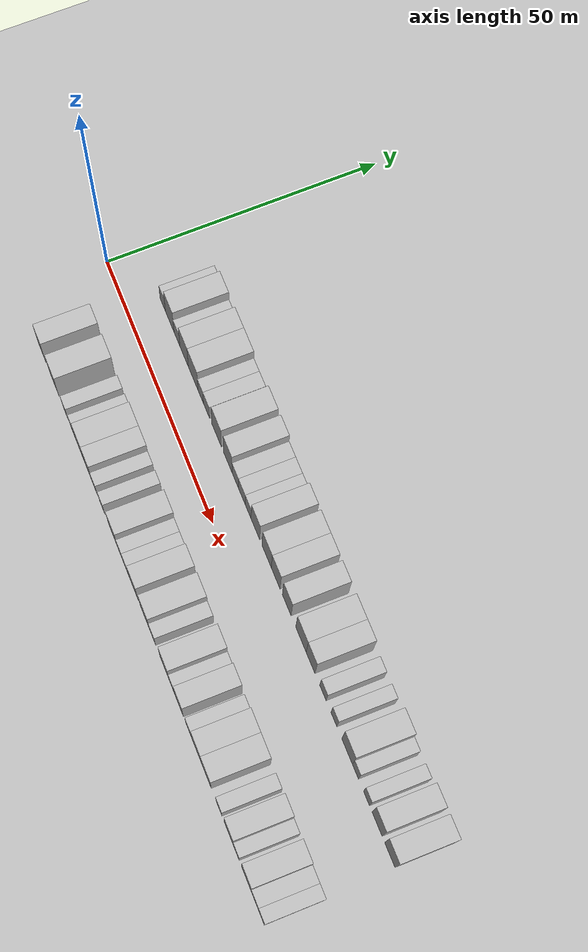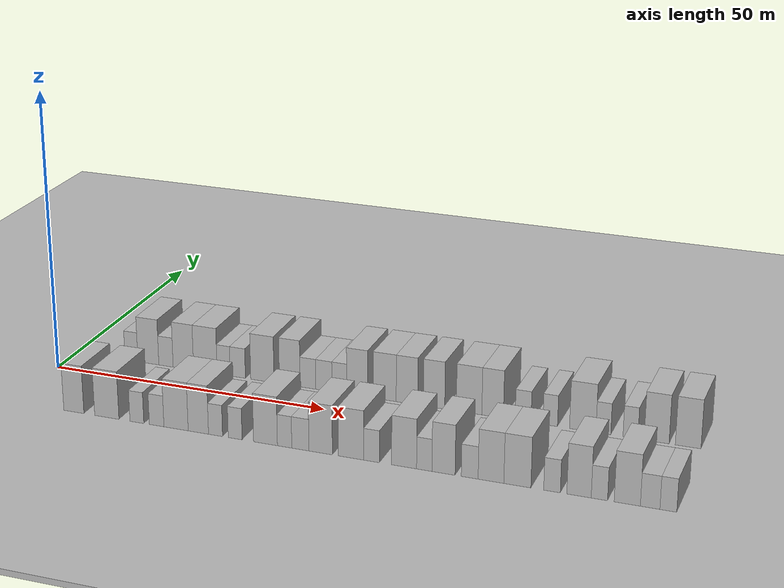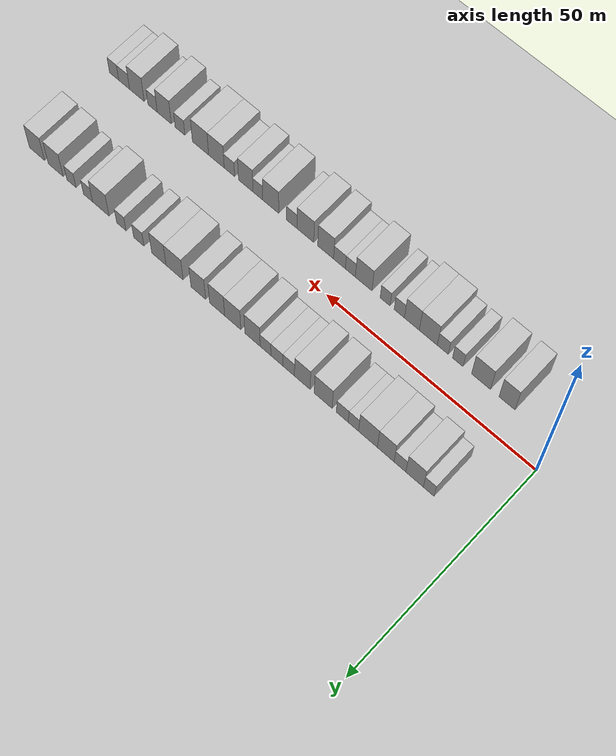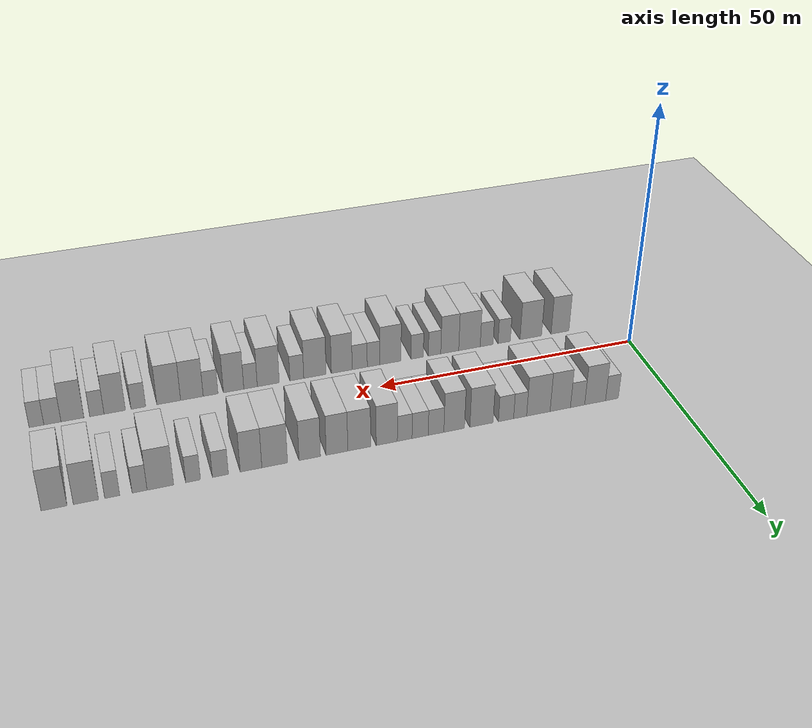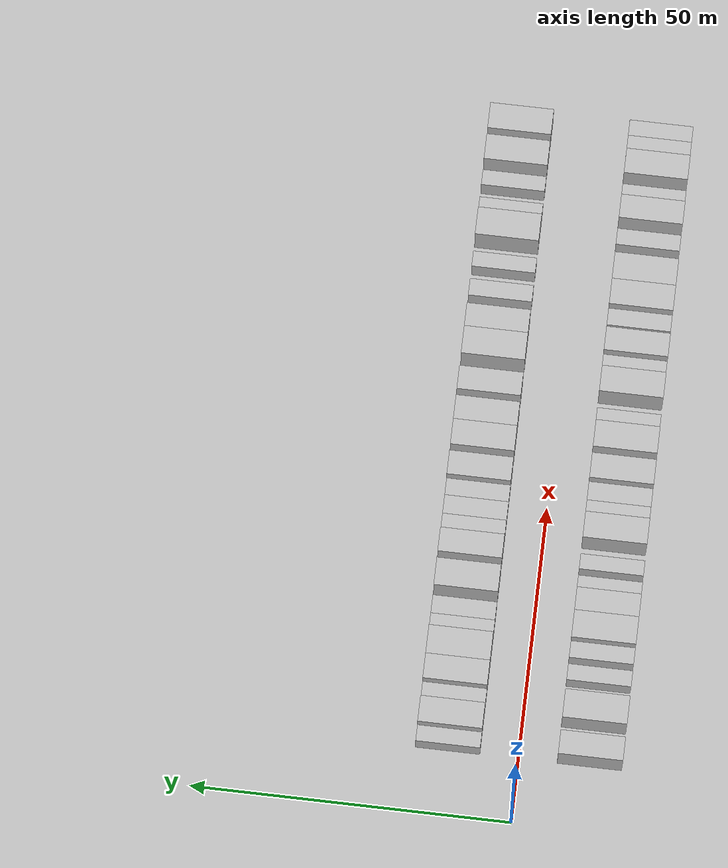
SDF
<sdf version="1.6">
 <world name="default">
  <include><name>ground_plane_1</name><uri>model://HANNAS_ground_plane</uri></include>
  <include>
   <name>ground_plane_2</name>
   <uri>model://HANNAS_ground_plane</uri>
   <pose>100 0 0  0 0 0</pose>
  </include>
  <model name="building_1">
   <static>1</static>
   <pose>11.2552 11.0000 0 0.000000 0.000000 1.570796</pose>
   <link name="link">
    <pose>0 0 3.00 0 0 0</pose>
    <collision name="collision"><geometry><box><size>10.0000 2.5103 6.0000</size></box></geometry></collision>
    <visual name="visual">
     <cast_shadows>0</cast_shadows>
     <geometry><box><size>10.0000 2.5103 6.0000</size></box></geometry>
     <material>
      <script>
       <uri>model://HANNAS_wall/materials/scripts</uri>
       <uri>model://HANNAS_wall/materials/textures</uri>
       <name>vrc/HANNAS_wall</name>
      </script>
     </material>
    </visual>
   </link>
  </model>
  <model name="building_2">
   <static>1</static>
   <pose>14.5496 11.0000 0 0.000000 0.000000 1.570796</pose>
   <link name="link">
    <pose>0 0 4.50 0 0 0</pose>
    <collision name="collision"><geometry><box><size>10.0000 4.0786 9.0000</size></box></geometry></collision>
    <visual name="visual">
     <cast_shadows>0</cast_shadows>
     <geometry><box><size>10.0000 4.0786 9.0000</size></box></geometry>
     <material>
      <script>
       <uri>model://HANNAS_wall/materials/scripts</uri>
       <uri>model://HANNAS_wall/materials/textures</uri>
       <name>vrc/HANNAS_wall</name>
      </script>
     </material>
    </visual>
   </link>
  </model>
  <model name="building_3">
   <static>1</static>
   <pose>17.9715 11.0000 0 0.000000 0.000000 1.570796</pose>
   <link name="link">
    <pose>0 0 3.00 0 0 0</pose>
    <collision name="collision"><geometry><box><size>10.0000 2.7652 6.0000</size></box></geometry></collision>
    <visual name="visual">
     <cast_shadows>0</cast_shadows>
     <geometry><box><size>10.0000 2.7652 6.0000</size></box></geometry>
     <material>
      <script>
       <uri>model://HANNAS_wall/materials/scripts</uri>
       <uri>model://HANNAS_wall/materials/textures</uri>
       <name>vrc/HANNAS_wall</name>
      </script>
     </material>
    </visual>
   </link>
  </model>
  <model name="building_4">
   <static>1</static>
   <pose>21.3193 11.0000 0 0.000000 0.000000 1.570796</pose>
   <link name="link">
    <pose>0 0 4.50 0 0 0</pose>
    <collision name="collision"><geometry><box><size>10.0000 3.9303 9.0000</size></box></geometry></collision>
    <visual name="visual">
     <cast_shadows>0</cast_shadows>
     <geometry><box><size>10.0000 3.9303 9.0000</size></box></geometry>
     <material>
      <script>
       <uri>model://HANNAS_wall/materials/scripts</uri>
       <uri>model://HANNAS_wall/materials/textures</uri>
       <name>vrc/HANNAS_wall</name>
      </script>
     </material>
    </visual>
   </link>
  </model>
  <model name="building_5">
   <static>1</static>
   <pose>25.5266 11.0000 0 0.000000 0.000000 1.570796</pose>
   <link name="link">
    <pose>0 0 4.50 0 0 0</pose>
    <collision name="collision"><geometry><box><size>10.0000 4.4843 9.0000</size></box></geometry></collision>
    <visual name="visual">
     <cast_shadows>0</cast_shadows>
     <geometry><box><size>10.0000 4.4843 9.0000</size></box></geometry>
     <material>
      <script>
       <uri>model://HANNAS_wall/materials/scripts</uri>
       <uri>model://HANNAS_wall/materials/textures</uri>
       <name>vrc/HANNAS_wall</name>
      </script>
     </material>
    </visual>
   </link>
  </model>
  <model name="building_6">
   <static>1</static>
   <pose>29.0020 11.0000 0 0.000000 0.000000 1.570796</pose>
   <link name="link">
    <pose>0 0 3.00 0 0 0</pose>
    <collision name="collision"><geometry><box><size>10.0000 2.4665 6.0000</size></box></geometry></collision>
    <visual name="visual">
     <cast_shadows>0</cast_shadows>
     <geometry><box><size>10.0000 2.4665 6.0000</size></box></geometry>
     <material>
      <script>
       <uri>model://HANNAS_wall/materials/scripts</uri>
       <uri>model://HANNAS_wall/materials/textures</uri>
       <name>vrc/HANNAS_wall</name>
      </script>
     </material>
    </visual>
   </link>
  </model>
  <model name="building_7">
   <static>1</static>
   <pose>31.6663 11.0000 0 0.000000 0.000000 1.570796</pose>
   <link name="link">
    <pose>0 0 3.00 0 0 0</pose>
    <collision name="collision"><geometry><box><size>10.0000 2.8623 6.0000</size></box></geometry></collision>
    <visual name="visual">
     <cast_shadows>0</cast_shadows>
     <geometry><box><size>10.0000 2.8623 6.0000</size></box></geometry>
     <material>
      <script>
       <uri>model://HANNAS_wall/materials/scripts</uri>
       <uri>model://HANNAS_wall/materials/textures</uri>
       <name>vrc/HANNAS_wall</name>
      </script>
     </material>
    </visual>
   </link>
  </model>
  <model name="building_8">
   <static>1</static>
   <pose>36.2682 11.0000 0 0.000000 0.000000 1.570796</pose>
   <link name="link">
    <pose>0 0 4.50 0 0 0</pose>
    <collision name="collision"><geometry><box><size>10.0000 4.3416 9.0000</size></box></geometry></collision>
    <visual name="visual">
     <cast_shadows>0</cast_shadows>
     <geometry><box><size>10.0000 4.3416 9.0000</size></box></geometry>
     <material>
      <script>
       <uri>model://HANNAS_wall/materials/scripts</uri>
       <uri>model://HANNAS_wall/materials/textures</uri>
       <name>vrc/HANNAS_wall</name>
      </script>
     </material>
    </visual>
   </link>
  </model>
  <model name="building_9">
   <static>1</static>
   <pose>41.3405 11.0000 0 0.000000 0.000000 1.570796</pose>
   <link name="link">
    <pose>0 0 4.50 0 0 0</pose>
    <collision name="collision"><geometry><box><size>10.0000 3.8029 9.0000</size></box></geometry></collision>
    <visual name="visual">
     <cast_shadows>0</cast_shadows>
     <geometry><box><size>10.0000 3.8029 9.0000</size></box></geometry>
     <material>
      <script>
       <uri>model://HANNAS_wall/materials/scripts</uri>
       <uri>model://HANNAS_wall/materials/textures</uri>
       <name>vrc/HANNAS_wall</name>
      </script>
     </material>
    </visual>
   </link>
  </model>
  <model name="building_10">
   <static>1</static>
   <pose>44.6761 11.0000 0 0.000000 0.000000 1.570796</pose>
   <link name="link">
    <pose>0 0 3.00 0 0 0</pose>
    <collision name="collision"><geometry><box><size>10.0000 2.8684 6.0000</size></box></geometry></collision>
    <visual name="visual">
     <cast_shadows>0</cast_shadows>
     <geometry><box><size>10.0000 2.8684 6.0000</size></box></geometry>
     <material>
      <script>
       <uri>model://HANNAS_wall/materials/scripts</uri>
       <uri>model://HANNAS_wall/materials/textures</uri>
       <name>vrc/HANNAS_wall</name>
      </script>
     </material>
    </visual>
   </link>
  </model>
  <model name="building_11">
   <static>1</static>
   <pose>47.5871 11.0000 0 0.000000 0.000000 1.570796</pose>
   <link name="link">
    <pose>0 0 3.00 0 0 0</pose>
    <collision name="collision"><geometry><box><size>10.0000 2.9535 6.0000</size></box></geometry></collision>
    <visual name="visual">
     <cast_shadows>0</cast_shadows>
     <geometry><box><size>10.0000 2.9535 6.0000</size></box></geometry>
     <material>
      <script>
       <uri>model://HANNAS_wall/materials/scripts</uri>
       <uri>model://HANNAS_wall/materials/textures</uri>
       <name>vrc/HANNAS_wall</name>
      </script>
     </material>
    </visual>
   </link>
  </model>
  <model name="building_12">
   <static>1</static>
   <pose>50.3958 11.0000 0 0.000000 0.000000 1.570796</pose>
   <link name="link">
    <pose>0 0 3.00 0 0 0</pose>
    <collision name="collision"><geometry><box><size>10.0000 2.6639 6.0000</size></box></geometry></collision>
    <visual name="visual">
     <cast_shadows>0</cast_shadows>
     <geometry><box><size>10.0000 2.6639 6.0000</size></box></geometry>
     <material>
      <script>
       <uri>model://HANNAS_wall/materials/scripts</uri>
       <uri>model://HANNAS_wall/materials/textures</uri>
       <name>vrc/HANNAS_wall</name>
      </script>
     </material>
    </visual>
   </link>
  </model>
  <model name="building_13">
   <static>1</static>
   <pose>53.6250 11.0000 0 0.000000 0.000000 1.570796</pose>
   <link name="link">
    <pose>0 0 4.50 0 0 0</pose>
    <collision name="collision"><geometry><box><size>10.0000 3.7947 9.0000</size></box></geometry></collision>
    <visual name="visual">
     <cast_shadows>0</cast_shadows>
     <geometry><box><size>10.0000 3.7947 9.0000</size></box></geometry>
     <material>
      <script>
       <uri>model://HANNAS_wall/materials/scripts</uri>
       <uri>model://HANNAS_wall/materials/textures</uri>
       <name>vrc/HANNAS_wall</name>
      </script>
     </material>
    </visual>
   </link>
  </model>
  <model name="building_14">
   <static>1</static>
   <pose>58.5556 11.0000 0 0.000000 0.000000 1.570796</pose>
   <link name="link">
    <pose>0 0 4.50 0 0 0</pose>
    <collision name="collision"><geometry><box><size>10.0000 4.0664 9.0000</size></box></geometry></collision>
    <visual name="visual">
     <cast_shadows>0</cast_shadows>
     <geometry><box><size>10.0000 4.0664 9.0000</size></box></geometry>
     <material>
      <script>
       <uri>model://HANNAS_wall/materials/scripts</uri>
       <uri>model://HANNAS_wall/materials/textures</uri>
       <name>vrc/HANNAS_wall</name>
      </script>
     </material>
    </visual>
   </link>
  </model>
  <model name="building_15">
   <static>1</static>
   <pose>62.4908 11.0000 0 0.000000 0.000000 1.570796</pose>
   <link name="link">
    <pose>0 0 4.50 0 0 0</pose>
    <collision name="collision"><geometry><box><size>10.0000 3.8040 9.0000</size></box></geometry></collision>
    <visual name="visual">
     <cast_shadows>0</cast_shadows>
     <geometry><box><size>10.0000 3.8040 9.0000</size></box></geometry>
     <material>
      <script>
       <uri>model://HANNAS_wall/materials/scripts</uri>
       <uri>model://HANNAS_wall/materials/textures</uri>
       <name>vrc/HANNAS_wall</name>
      </script>
     </material>
    </visual>
   </link>
  </model>
  <model name="building_16">
   <static>1</static>
   <pose>67.2608 11.0000 0 0.000000 0.000000 1.570796</pose>
   <link name="link">
    <pose>0 0 4.50 0 0 0</pose>
    <collision name="collision"><geometry><box><size>10.0000 3.7361 9.0000</size></box></geometry></collision>
    <visual name="visual">
     <cast_shadows>0</cast_shadows>
     <geometry><box><size>10.0000 3.7361 9.0000</size></box></geometry>
     <material>
      <script>
       <uri>model://HANNAS_wall/materials/scripts</uri>
       <uri>model://HANNAS_wall/materials/textures</uri>
       <name>vrc/HANNAS_wall</name>
      </script>
     </material>
    </visual>
   </link>
  </model>
  <model name="building_17">
   <static>1</static>
   <pose>73.3346 11.0000 0 0.000000 0.000000 1.570796</pose>
   <link name="link">
    <pose>0 0 4.50 0 0 0</pose>
    <collision name="collision"><geometry><box><size>10.0000 4.4116 9.0000</size></box></geometry></collision>
    <visual name="visual">
     <cast_shadows>0</cast_shadows>
     <geometry><box><size>10.0000 4.4116 9.0000</size></box></geometry>
     <material>
      <script>
       <uri>model://HANNAS_wall/materials/scripts</uri>
       <uri>model://HANNAS_wall/materials/textures</uri>
       <name>vrc/HANNAS_wall</name>
      </script>
     </material>
    </visual>
   </link>
  </model>
  <model name="building_18">
   <static>1</static>
   <pose>77.3870 11.0000 0 0.000000 0.000000 1.570796</pose>
   <link name="link">
    <pose>0 0 4.50 0 0 0</pose>
    <collision name="collision"><geometry><box><size>10.0000 3.6932 9.0000</size></box></geometry></collision>
    <visual name="visual">
     <cast_shadows>0</cast_shadows>
     <geometry><box><size>10.0000 3.6932 9.0000</size></box></geometry>
     <material>
      <script>
       <uri>model://HANNAS_wall/materials/scripts</uri>
       <uri>model://HANNAS_wall/materials/textures</uri>
       <name>vrc/HANNAS_wall</name>
      </script>
     </material>
    </visual>
   </link>
  </model>
  <model name="building_19">
   <static>1</static>
   <pose>82.5772 11.0000 0 0.000000 0.000000 1.570796</pose>
   <link name="link">
    <pose>0 0 3.00 0 0 0</pose>
    <collision name="collision"><geometry><box><size>10.0000 2.6872 6.0000</size></box></geometry></collision>
    <visual name="visual">
     <cast_shadows>0</cast_shadows>
     <geometry><box><size>10.0000 2.6872 6.0000</size></box></geometry>
     <material>
      <script>
       <uri>model://HANNAS_wall/materials/scripts</uri>
       <uri>model://HANNAS_wall/materials/textures</uri>
       <name>vrc/HANNAS_wall</name>
      </script>
     </material>
    </visual>
   </link>
  </model>
  <model name="building_20">
   <static>1</static>
   <pose>87.1497 11.0000 0 0.000000 0.000000 1.570796</pose>
   <link name="link">
    <pose>0 0 3.00 0 0 0</pose>
    <collision name="collision"><geometry><box><size>10.0000 2.4577 6.0000</size></box></geometry></collision>
    <visual name="visual">
     <cast_shadows>0</cast_shadows>
     <geometry><box><size>10.0000 2.4577 6.0000</size></box></geometry>
     <material>
      <script>
       <uri>model://HANNAS_wall/materials/scripts</uri>
       <uri>model://HANNAS_wall/materials/textures</uri>
       <name>vrc/HANNAS_wall</name>
      </script>
     </material>
    </visual>
   </link>
  </model>
  <model name="building_21">
   <static>1</static>
   <pose>92.5695 11.0000 0 0.000000 0.000000 1.570796</pose>
   <link name="link">
    <pose>0 0 4.50 0 0 0</pose>
    <collision name="collision"><geometry><box><size>10.0000 4.3818 9.0000</size></box></geometry></collision>
    <visual name="visual">
     <cast_shadows>0</cast_shadows>
     <geometry><box><size>10.0000 4.3818 9.0000</size></box></geometry>
     <material>
      <script>
       <uri>model://HANNAS_wall/materials/scripts</uri>
       <uri>model://HANNAS_wall/materials/textures</uri>
       <name>vrc/HANNAS_wall</name>
      </script>
     </material>
    </visual>
   </link>
  </model>
  <model name="building_22">
   <static>1</static>
   <pose>95.9836 11.0000 0 0.000000 0.000000 1.570796</pose>
   <link name="link">
    <pose>0 0 3.00 0 0 0</pose>
    <collision name="collision"><geometry><box><size>10.0000 2.4465 6.0000</size></box></geometry></collision>
    <visual name="visual">
     <cast_shadows>0</cast_shadows>
     <geometry><box><size>10.0000 2.4465 6.0000</size></box></geometry>
     <material>
      <script>
       <uri>model://HANNAS_wall/materials/scripts</uri>
       <uri>model://HANNAS_wall/materials/textures</uri>
       <name>vrc/HANNAS_wall</name>
      </script>
     </material>
    </visual>
   </link>
  </model>
  <model name="building_23">
   <static>1</static>
   <pose>100.4280 11.0000 0 0.000000 0.000000 1.570796</pose>
   <link name="link">
    <pose>0 0 3.00 0 0 0</pose>
    <collision name="collision"><geometry><box><size>10.0000 2.4423 6.0000</size></box></geometry></collision>
    <visual name="visual">
     <cast_shadows>0</cast_shadows>
     <geometry><box><size>10.0000 2.4423 6.0000</size></box></geometry>
     <material>
      <script>
       <uri>model://HANNAS_wall/materials/scripts</uri>
       <uri>model://HANNAS_wall/materials/textures</uri>
       <name>vrc/HANNAS_wall</name>
      </script>
     </material>
    </visual>
   </link>
  </model>
  <model name="building_24">
   <static>1</static>
   <pose>104.6647 11.0000 0 0.000000 0.000000 1.570796</pose>
   <link name="link">
    <pose>0 0 4.50 0 0 0</pose>
    <collision name="collision"><geometry><box><size>10.0000 4.0310 9.0000</size></box></geometry></collision>
    <visual name="visual">
     <cast_shadows>0</cast_shadows>
     <geometry><box><size>10.0000 4.0310 9.0000</size></box></geometry>
     <material>
      <script>
       <uri>model://HANNAS_wall/materials/scripts</uri>
       <uri>model://HANNAS_wall/materials/textures</uri>
       <name>vrc/HANNAS_wall</name>
      </script>
     </material>
    </visual>
   </link>
  </model>
  <model name="building_25">
   <static>1</static>
   <pose>109.7369 11.0000 0 0.000000 0.000000 1.570796</pose>
   <link name="link">
    <pose>0 0 4.50 0 0 0</pose>
    <collision name="collision"><geometry><box><size>10.0000 4.1134 9.0000</size></box></geometry></collision>
    <visual name="visual">
     <cast_shadows>0</cast_shadows>
     <geometry><box><size>10.0000 4.1134 9.0000</size></box></geometry>
     <material>
      <script>
       <uri>model://HANNAS_wall/materials/scripts</uri>
       <uri>model://HANNAS_wall/materials/textures</uri>
       <name>vrc/HANNAS_wall</name>
      </script>
     </material>
    </visual>
   </link>
  </model>
  <model name="building_50">
   <static>1</static>
   <pose>11.8680 -11.0000 0 0.000000 0.000000 1.570796</pose>
   <link name="link">
    <pose>0 0 4.50 0 0 0</pose>
    <collision name="collision"><geometry><box><size>10.0000 3.7359 9.0000</size></box></geometry></collision>
    <visual name="visual">
     <cast_shadows>0</cast_shadows>
     <geometry><box><size>10.0000 3.7359 9.0000</size></box></geometry>
     <material>
      <script>
       <uri>model://HANNAS_wall/materials/scripts</uri>
       <uri>model://HANNAS_wall/materials/textures</uri>
       <name>vrc/HANNAS_wall</name>
      </script>
     </material>
    </visual>
   </link>
  </model>
  <model name="building_51">
   <static>1</static>
   <pose>17.9670 -11.0000 0 0.000000 0.000000 1.570796</pose>
   <link name="link">
    <pose>0 0 4.50 0 0 0</pose>
    <collision name="collision"><geometry><box><size>10.0000 4.4622 9.0000</size></box></geometry></collision>
    <visual name="visual">
     <cast_shadows>0</cast_shadows>
     <geometry><box><size>10.0000 4.4622 9.0000</size></box></geometry>
     <material>
      <script>
       <uri>model://HANNAS_wall/materials/scripts</uri>
       <uri>model://HANNAS_wall/materials/textures</uri>
       <name>vrc/HANNAS_wall</name>
      </script>
     </material>
    </visual>
   </link>
  </model>
  <model name="building_52">
   <static>1</static>
   <pose>23.4611 -11.0000 0 0.000000 0.000000 1.570796</pose>
   <link name="link">
    <pose>0 0 3.00 0 0 0</pose>
    <collision name="collision"><geometry><box><size>10.0000 2.5260 6.0000</size></box></geometry></collision>
    <visual name="visual">
     <cast_shadows>0</cast_shadows>
     <geometry><box><size>10.0000 2.5260 6.0000</size></box></geometry>
     <material>
      <script>
       <uri>model://HANNAS_wall/materials/scripts</uri>
       <uri>model://HANNAS_wall/materials/textures</uri>
       <name>vrc/HANNAS_wall</name>
      </script>
     </material>
    </visual>
   </link>
  </model>
  <model name="building_53">
   <static>1</static>
   <pose>27.0365 -11.0000 0 0.000000 0.000000 1.570796</pose>
   <link name="link">
    <pose>0 0 3.00 0 0 0</pose>
    <collision name="collision"><geometry><box><size>10.0000 2.6248 6.0000</size></box></geometry></collision>
    <visual name="visual">
     <cast_shadows>0</cast_shadows>
     <geometry><box><size>10.0000 2.6248 6.0000</size></box></geometry>
     <material>
      <script>
       <uri>model://HANNAS_wall/materials/scripts</uri>
       <uri>model://HANNAS_wall/materials/textures</uri>
       <name>vrc/HANNAS_wall</name>
      </script>
     </material>
    </visual>
   </link>
  </model>
  <model name="building_54">
   <static>1</static>
   <pose>30.5215 -11.0000 0 0.000000 0.000000 1.570796</pose>
   <link name="link">
    <pose>0 0 4.50 0 0 0</pose>
    <collision name="collision"><geometry><box><size>10.0000 4.3451 9.0000</size></box></geometry></collision>
    <visual name="visual">
     <cast_shadows>0</cast_shadows>
     <geometry><box><size>10.0000 4.3451 9.0000</size></box></geometry>
     <material>
      <script>
       <uri>model://HANNAS_wall/materials/scripts</uri>
       <uri>model://HANNAS_wall/materials/textures</uri>
       <name>vrc/HANNAS_wall</name>
      </script>
     </material>
    </visual>
   </link>
  </model>
  <model name="building_55">
   <static>1</static>
   <pose>34.4956 -11.0000 0 0.000000 0.000000 1.570796</pose>
   <link name="link">
    <pose>0 0 4.50 0 0 0</pose>
    <collision name="collision"><geometry><box><size>10.0000 3.6031 9.0000</size></box></geometry></collision>
    <visual name="visual">
     <cast_shadows>0</cast_shadows>
     <geometry><box><size>10.0000 3.6031 9.0000</size></box></geometry>
     <material>
      <script>
       <uri>model://HANNAS_wall/materials/scripts</uri>
       <uri>model://HANNAS_wall/materials/textures</uri>
       <name>vrc/HANNAS_wall</name>
      </script>
     </material>
    </visual>
   </link>
  </model>
  <model name="building_56">
   <static>1</static>
   <pose>37.5388 -11.0000 0 0.000000 0.000000 1.570796</pose>
   <link name="link">
    <pose>0 0 3.00 0 0 0</pose>
    <collision name="collision"><geometry><box><size>10.0000 2.4834 6.0000</size></box></geometry></collision>
    <visual name="visual">
     <cast_shadows>0</cast_shadows>
     <geometry><box><size>10.0000 2.4834 6.0000</size></box></geometry>
     <material>
      <script>
       <uri>model://HANNAS_wall/materials/scripts</uri>
       <uri>model://HANNAS_wall/materials/textures</uri>
       <name>vrc/HANNAS_wall</name>
      </script>
     </material>
    </visual>
   </link>
  </model>
  <model name="building_57">
   <static>1</static>
   <pose>40.9921 -11.0000 0 0.000000 0.000000 1.570796</pose>
   <link name="link">
    <pose>0 0 3.00 0 0 0</pose>
    <collision name="collision"><geometry><box><size>10.0000 2.4232 6.0000</size></box></geometry></collision>
    <visual name="visual">
     <cast_shadows>0</cast_shadows>
     <geometry><box><size>10.0000 2.4232 6.0000</size></box></geometry>
     <material>
      <script>
       <uri>model://HANNAS_wall/materials/scripts</uri>
       <uri>model://HANNAS_wall/materials/textures</uri>
       <name>vrc/HANNAS_wall</name>
      </script>
     </material>
    </visual>
   </link>
  </model>
  <model name="building_58">
   <static>1</static>
   <pose>46.2640 -11.0000 0 0.000000 0.000000 1.570796</pose>
   <link name="link">
    <pose>0 0 4.50 0 0 0</pose>
    <collision name="collision"><geometry><box><size>10.0000 4.1206 9.0000</size></box></geometry></collision>
    <visual name="visual">
     <cast_shadows>0</cast_shadows>
     <geometry><box><size>10.0000 4.1206 9.0000</size></box></geometry>
     <material>
      <script>
       <uri>model://HANNAS_wall/materials/scripts</uri>
       <uri>model://HANNAS_wall/materials/textures</uri>
       <name>vrc/HANNAS_wall</name>
      </script>
     </material>
    </visual>
   </link>
  </model>
  <model name="building_59">
   <static>1</static>
   <pose>49.5574 -11.0000 0 0.000000 0.000000 1.570796</pose>
   <link name="link">
    <pose>0 0 3.00 0 0 0</pose>
    <collision name="collision"><geometry><box><size>10.0000 2.4662 6.0000</size></box></geometry></collision>
    <visual name="visual">
     <cast_shadows>0</cast_shadows>
     <geometry><box><size>10.0000 2.4662 6.0000</size></box></geometry>
     <material>
      <script>
       <uri>model://HANNAS_wall/materials/scripts</uri>
       <uri>model://HANNAS_wall/materials/textures</uri>
       <name>vrc/HANNAS_wall</name>
      </script>
     </material>
    </visual>
   </link>
  </model>
  <model name="building_60">
   <static>1</static>
   <pose>52.2561 -11.0000 0 0.000000 0.000000 1.570796</pose>
   <link name="link">
    <pose>0 0 3.00 0 0 0</pose>
    <collision name="collision"><geometry><box><size>10.0000 2.9311 6.0000</size></box></geometry></collision>
    <visual name="visual">
     <cast_shadows>0</cast_shadows>
     <geometry><box><size>10.0000 2.9311 6.0000</size></box></geometry>
     <material>
      <script>
       <uri>model://HANNAS_wall/materials/scripts</uri>
       <uri>model://HANNAS_wall/materials/textures</uri>
       <name>vrc/HANNAS_wall</name>
      </script>
     </material>
    </visual>
   </link>
  </model>
  <model name="building_61">
   <static>1</static>
   <pose>55.7129 -11.0000 0 0.000000 0.000000 1.570796</pose>
   <link name="link">
    <pose>0 0 4.50 0 0 0</pose>
    <collision name="collision"><geometry><box><size>10.0000 3.9826 9.0000</size></box></geometry></collision>
    <visual name="visual">
     <cast_shadows>0</cast_shadows>
     <geometry><box><size>10.0000 3.9826 9.0000</size></box></geometry>
     <material>
      <script>
       <uri>model://HANNAS_wall/materials/scripts</uri>
       <uri>model://HANNAS_wall/materials/textures</uri>
       <name>vrc/HANNAS_wall</name>
      </script>
     </material>
    </visual>
   </link>
  </model>
  <model name="building_62">
   <static>1</static>
   <pose>60.8336 -11.0000 0 0.000000 0.000000 1.570796</pose>
   <link name="link">
    <pose>0 0 4.50 0 0 0</pose>
    <collision name="collision"><geometry><box><size>10.0000 4.2587 9.0000</size></box></geometry></collision>
    <visual name="visual">
     <cast_shadows>0</cast_shadows>
     <geometry><box><size>10.0000 4.2587 9.0000</size></box></geometry>
     <material>
      <script>
       <uri>model://HANNAS_wall/materials/scripts</uri>
       <uri>model://HANNAS_wall/materials/textures</uri>
       <name>vrc/HANNAS_wall</name>
      </script>
     </material>
    </visual>
   </link>
  </model>
  <model name="building_63">
   <static>1</static>
   <pose>64.2730 -11.0000 0 0.000000 0.000000 1.570796</pose>
   <link name="link">
    <pose>0 0 3.00 0 0 0</pose>
    <collision name="collision"><geometry><box><size>10.0000 2.6202 6.0000</size></box></geometry></collision>
    <visual name="visual">
     <cast_shadows>0</cast_shadows>
     <geometry><box><size>10.0000 2.6202 6.0000</size></box></geometry>
     <material>
      <script>
       <uri>model://HANNAS_wall/materials/scripts</uri>
       <uri>model://HANNAS_wall/materials/textures</uri>
       <name>vrc/HANNAS_wall</name>
      </script>
     </material>
    </visual>
   </link>
  </model>
  <model name="building_64">
   <static>1</static>
   <pose>69.6367 -11.0000 0 0.000000 0.000000 1.570796</pose>
   <link name="link">
    <pose>0 0 4.50 0 0 0</pose>
    <collision name="collision"><geometry><box><size>10.0000 4.1071 9.0000</size></box></geometry></collision>
    <visual name="visual">
     <cast_shadows>0</cast_shadows>
     <geometry><box><size>10.0000 4.1071 9.0000</size></box></geometry>
     <material>
      <script>
       <uri>model://HANNAS_wall/materials/scripts</uri>
       <uri>model://HANNAS_wall/materials/textures</uri>
       <name>vrc/HANNAS_wall</name>
      </script>
     </material>
    </visual>
   </link>
  </model>
  <model name="building_65">
   <static>1</static>
   <pose>72.9438 -11.0000 0 0.000000 0.000000 1.570796</pose>
   <link name="link">
    <pose>0 0 3.00 0 0 0</pose>
    <collision name="collision"><geometry><box><size>10.0000 2.5071 6.0000</size></box></geometry></collision>
    <visual name="visual">
     <cast_shadows>0</cast_shadows>
     <geometry><box><size>10.0000 2.5071 6.0000</size></box></geometry>
     <material>
      <script>
       <uri>model://HANNAS_wall/materials/scripts</uri>
       <uri>model://HANNAS_wall/materials/textures</uri>
       <name>vrc/HANNAS_wall</name>
      </script>
     </material>
    </visual>
   </link>
  </model>
  <model name="building_66">
   <static>1</static>
   <pose>76.0719 -11.0000 0 0.000000 0.000000 1.570796</pose>
   <link name="link">
    <pose>0 0 4.50 0 0 0</pose>
    <collision name="collision"><geometry><box><size>10.0000 3.7492 9.0000</size></box></geometry></collision>
    <visual name="visual">
     <cast_shadows>0</cast_shadows>
     <geometry><box><size>10.0000 3.7492 9.0000</size></box></geometry>
     <material>
      <script>
       <uri>model://HANNAS_wall/materials/scripts</uri>
       <uri>model://HANNAS_wall/materials/textures</uri>
       <name>vrc/HANNAS_wall</name>
      </script>
     </material>
    </visual>
   </link>
  </model>
  <model name="building_67">
   <static>1</static>
   <pose>80.2975 -11.0000 0 0.000000 0.000000 1.570796</pose>
   <link name="link">
    <pose>0 0 3.00 0 0 0</pose>
    <collision name="collision"><geometry><box><size>10.0000 2.7019 6.0000</size></box></geometry></collision>
    <visual name="visual">
     <cast_shadows>0</cast_shadows>
     <geometry><box><size>10.0000 2.7019 6.0000</size></box></geometry>
     <material>
      <script>
       <uri>model://HANNAS_wall/materials/scripts</uri>
       <uri>model://HANNAS_wall/materials/textures</uri>
       <name>vrc/HANNAS_wall</name>
      </script>
     </material>
    </visual>
   </link>
  </model>
  <model name="building_68">
   <static>1</static>
   <pose>83.6960 -11.0000 0 0.000000 0.000000 1.570796</pose>
   <link name="link">
    <pose>0 0 4.50 0 0 0</pose>
    <collision name="collision"><geometry><box><size>10.0000 4.0952 9.0000</size></box></geometry></collision>
    <visual name="visual">
     <cast_shadows>0</cast_shadows>
     <geometry><box><size>10.0000 4.0952 9.0000</size></box></geometry>
     <material>
      <script>
       <uri>model://HANNAS_wall/materials/scripts</uri>
       <uri>model://HANNAS_wall/materials/textures</uri>
       <name>vrc/HANNAS_wall</name>
      </script>
     </material>
    </visual>
   </link>
  </model>
  <model name="building_69">
   <static>1</static>
   <pose>87.8811 -11.0000 0 0.000000 0.000000 1.570796</pose>
   <link name="link">
    <pose>0 0 4.50 0 0 0</pose>
    <collision name="collision"><geometry><box><size>10.0000 4.2751 9.0000</size></box></geometry></collision>
    <visual name="visual">
     <cast_shadows>0</cast_shadows>
     <geometry><box><size>10.0000 4.2751 9.0000</size></box></geometry>
     <material>
      <script>
       <uri>model://HANNAS_wall/materials/scripts</uri>
       <uri>model://HANNAS_wall/materials/textures</uri>
       <name>vrc/HANNAS_wall</name>
      </script>
     </material>
    </visual>
   </link>
  </model>
  <model name="building_70">
   <static>1</static>
   <pose>93.3188 -11.0000 0 0.000000 0.000000 1.570796</pose>
   <link name="link">
    <pose>0 0 3.00 0 0 0</pose>
    <collision name="collision"><geometry><box><size>10.0000 2.6002 6.0000</size></box></geometry></collision>
    <visual name="visual">
     <cast_shadows>0</cast_shadows>
     <geometry><box><size>10.0000 2.6002 6.0000</size></box></geometry>
     <material>
      <script>
       <uri>model://HANNAS_wall/materials/scripts</uri>
       <uri>model://HANNAS_wall/materials/textures</uri>
       <name>vrc/HANNAS_wall</name>
      </script>
     </material>
    </visual>
   </link>
  </model>
  <model name="building_71">
   <static>1</static>
   <pose>97.5014 -11.0000 0 0.000000 0.000000 1.570796</pose>
   <link name="link">
    <pose>0 0 4.50 0 0 0</pose>
    <collision name="collision"><geometry><box><size>10.0000 3.7650 9.0000</size></box></geometry></collision>
    <visual name="visual">
     <cast_shadows>0</cast_shadows>
     <geometry><box><size>10.0000 3.7650 9.0000</size></box></geometry>
     <material>
      <script>
       <uri>model://HANNAS_wall/materials/scripts</uri>
       <uri>model://HANNAS_wall/materials/textures</uri>
       <name>vrc/HANNAS_wall</name>
      </script>
     </material>
    </visual>
   </link>
  </model>
  <model name="building_72">
   <static>1</static>
   <pose>100.6396 -11.0000 0 0.000000 0.000000 1.570796</pose>
   <link name="link">
    <pose>0 0 3.00 0 0 0</pose>
    <collision name="collision"><geometry><box><size>10.0000 2.5114 6.0000</size></box></geometry></collision>
    <visual name="visual">
     <cast_shadows>0</cast_shadows>
     <geometry><box><size>10.0000 2.5114 6.0000</size></box></geometry>
     <material>
      <script>
       <uri>model://HANNAS_wall/materials/scripts</uri>
       <uri>model://HANNAS_wall/materials/textures</uri>
       <name>vrc/HANNAS_wall</name>
      </script>
     </material>
    </visual>
   </link>
  </model>
  <model name="building_73">
   <static>1</static>
   <pose>104.8852 -11.0000 0 0.000000 0.000000 1.570796</pose>
   <link name="link">
    <pose>0 0 4.50 0 0 0</pose>
    <collision name="collision"><geometry><box><size>10.0000 3.9797 9.0000</size></box></geometry></collision>
    <visual name="visual">
     <cast_shadows>0</cast_shadows>
     <geometry><box><size>10.0000 3.9797 9.0000</size></box></geometry>
     <material>
      <script>
       <uri>model://HANNAS_wall/materials/scripts</uri>
       <uri>model://HANNAS_wall/materials/textures</uri>
       <name>vrc/HANNAS_wall</name>
      </script>
     </material>
    </visual>
   </link>
  </model>
  <model name="building_74">
   <static>1</static>
   <pose>108.3488 -11.0000 0 0.000000 0.000000 1.570796</pose>
   <link name="link">
    <pose>0 0 3.00 0 0 0</pose>
    <collision name="collision"><geometry><box><size>10.0000 2.9476 6.0000</size></box></geometry></collision>
    <visual name="visual">
     <cast_shadows>0</cast_shadows>
     <geometry><box><size>10.0000 2.9476 6.0000</size></box></geometry>
     <material>
      <script>
       <uri>model://HANNAS_wall/materials/scripts</uri>
       <uri>model://HANNAS_wall/materials/textures</uri>
       <name>vrc/HANNAS_wall</name>
      </script>
     </material>
    </visual>
   </link>
  </model>
  <model name="building_75">
   <static>1</static>
   <pose>111.0839 -11.0000 0 0.000000 0.000000 1.570796</pose>
   <link name="link">
    <pose>0 0 3.00 0 0 0</pose>
    <collision name="collision"><geometry><box><size>10.0000 2.5226 6.0000</size></box></geometry></collision>
    <visual name="visual">
     <cast_shadows>0</cast_shadows>
     <geometry><box><size>10.0000 2.5226 6.0000</size></box></geometry>
     <material>
      <script>
       <uri>model://HANNAS_wall/materials/scripts</uri>
       <uri>model://HANNAS_wall/materials/textures</uri>
       <name>vrc/HANNAS_wall</name>
      </script>
     </material>
    </visual>
   </link>
  </model>
 </world>
</sdf>
